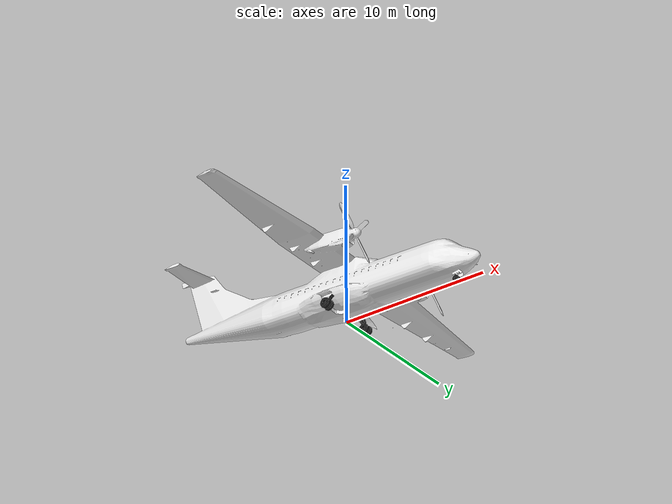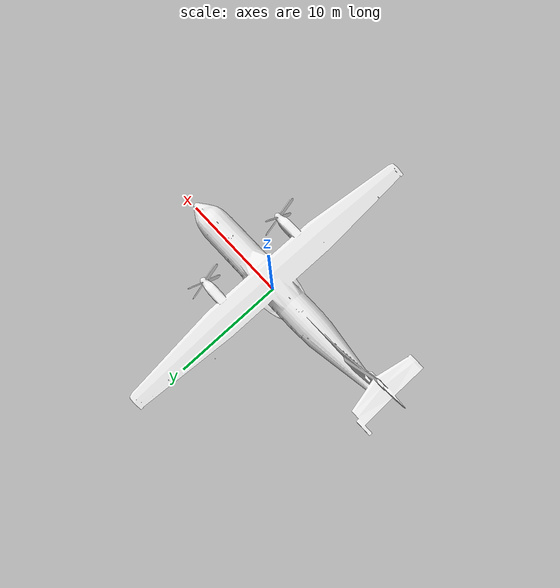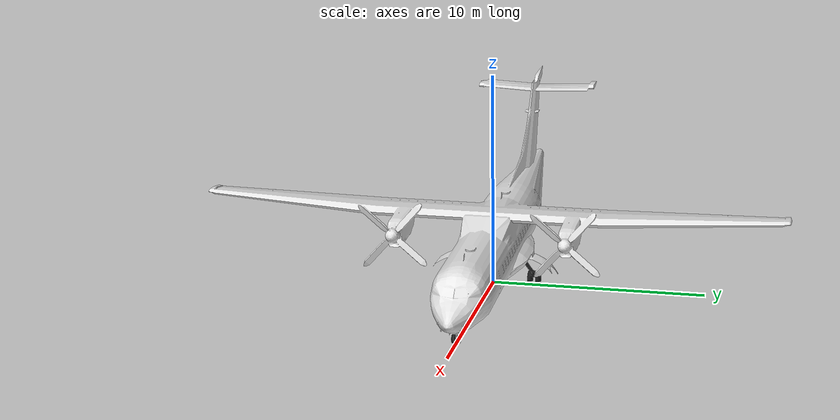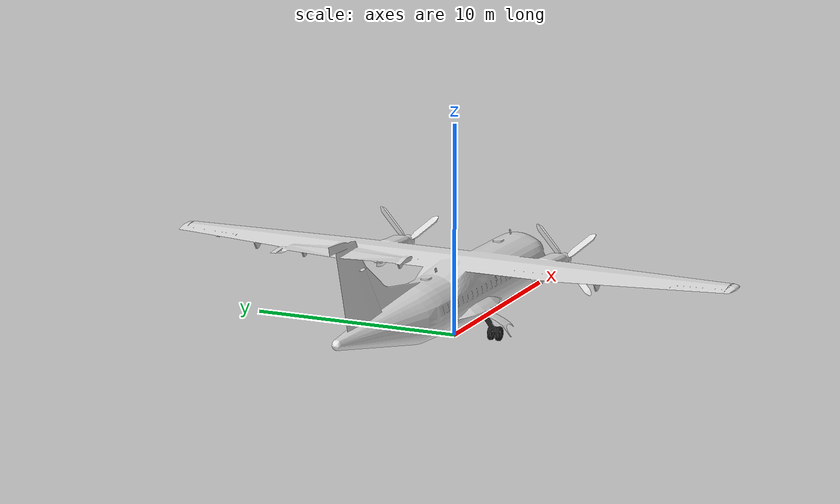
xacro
<?xml version="1.0"?>
<robot xmlns:xacro="http://www.ros.org/wiki/xacro" name="aircraft">
    <!-- 1. LINK DEFINITIONS                                                   -->
    <!-- All visual origins stay at (0,0,0) with (0,0,0) rotation    -->
    <!-- because the origins and pitch were permanently made into the STLs!   -->

    <!-- NOSE WHEEL LINK (Parent link for the aircraft chain) -->
    <link name="aircraft_nose_wheel_link">
        <visual>
            <origin xyz="0 0 0" rpy="0 0 0"/>
            <geometry>
                <mesh filename="package://aircraft_design/meshes/aircraft_nose_wheel.stl" scale="1 1 1"/>
            </geometry>
            <material name="black">
                <color rgba="0.1 0.1 0.1 1.0"/>
            </material>
        </visual>
    </link>

    <!-- MAIN FUSELAGE / BASE LINK -->
    <link name="aircraft_base_link">
        <visual>
            <origin xyz="0 0 0" rpy="0 0 0"/>
            <geometry>
                <mesh filename="package://aircraft_design/meshes/aircraft_base.stl" scale="1 1 1"/>
            </geometry>
            <material name="white">
                <color rgba="0.9 0.9 0.9 1.0"/>
            </material>
        </visual>
    </link>

    <!-- LEFT MAIN LANDING GEAR -->
    <link name="aircraft_left_mlg_link">
        <visual>
            <origin xyz="0 0 0" rpy="0 0 0"/>
            <geometry>
                <mesh filename="package://aircraft_design/meshes/aircraft_left_mlg.stl" scale="1 1 1"/>
            </geometry>
            <material name="black"/>
        </visual>
    </link>

    <!-- RIGHT MAIN LANDING GEAR -->
    <link name="aircraft_right_mlg_link">
        <visual>
            <origin xyz="0 0 0" rpy="0 0 0"/>
            <geometry>
                <mesh filename="package://aircraft_design/meshes/aircraft_right_mlg.stl" scale="1 1 1"/>
            </geometry>
            <material name="black"/>
        </visual>
    </link>

    <!-- 2. JOINT DEFINITIONS                                                  -->
    <!-- Tree structure: tractor_hitch -> nose_wheel -> base_link -> MLGs      -->

    <!-- JOINT: Nose Wheel to Base Link -->
    <joint name="aircraft_nose_to_base" type="fixed">
        <parent link="aircraft_nose_wheel_link"/>
        <child link="aircraft_base_link"/>
        <origin xyz="0 0 0" rpy="0 0 0"/>
    </joint>

    <!-- JOINT: Base Link to Left Main Landing Gear -->

    <joint name="aircraft_base_to_left_mlg" type="fixed">
        <parent link="aircraft_base_link"/>
        <child link="aircraft_left_mlg_link"/>
        <origin xyz="0 0 0" rpy="0 0 0"/>
        <axis xyz="0 1 0"/>
    </joint>

    <!-- JOINT: Base Link to Right Main Landing Gear -->
    <joint name="aircraft_base_to_right_mlg" type="fixed">
        <parent link="aircraft_base_link"/>
        <child link="aircraft_right_mlg_link"/>
        <origin xyz="0 0 0" rpy="0 0 0"/>
        <axis xyz="0 1 0"/>
    </joint>

</robot>
